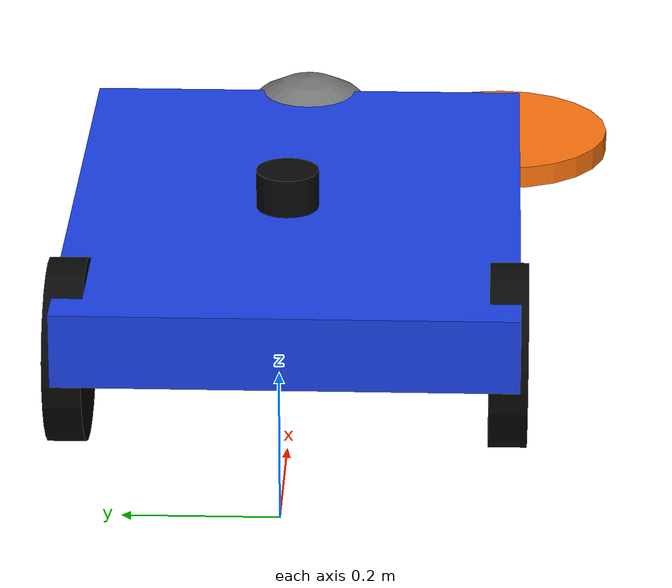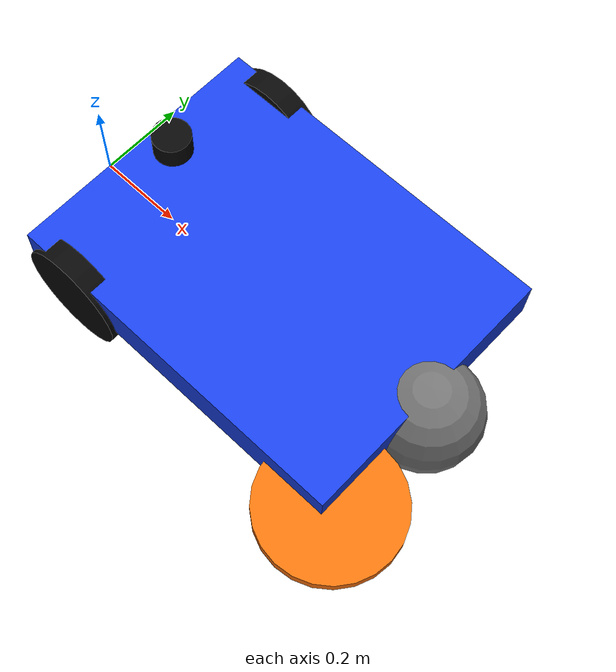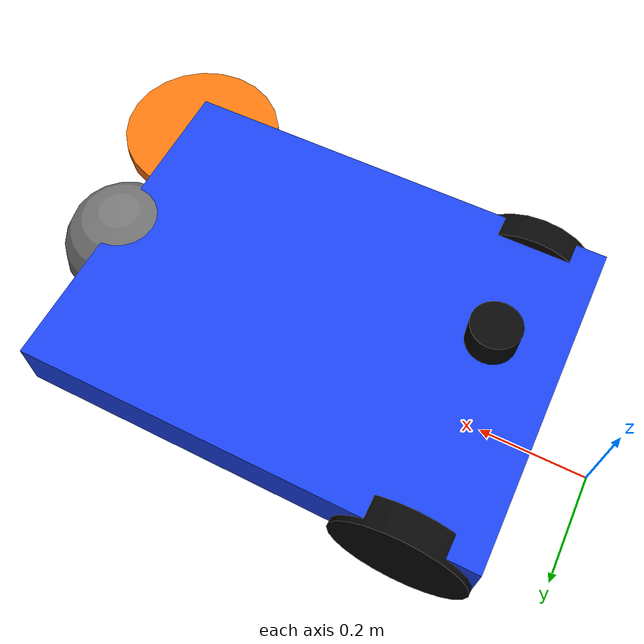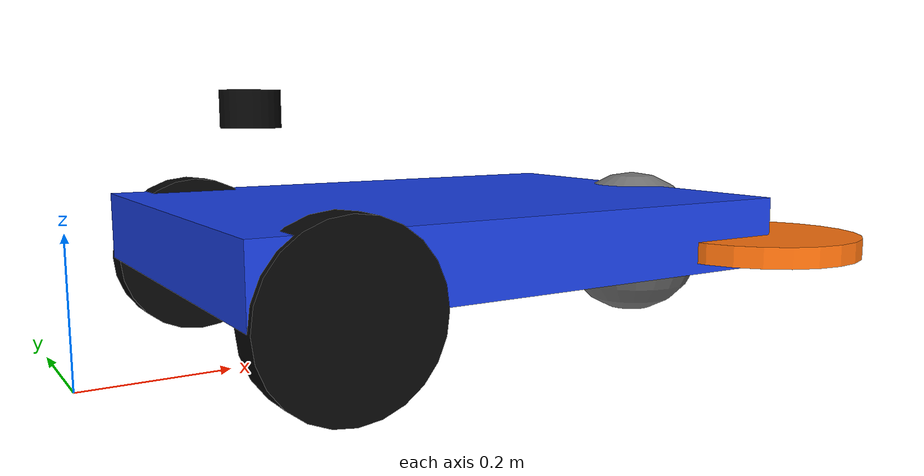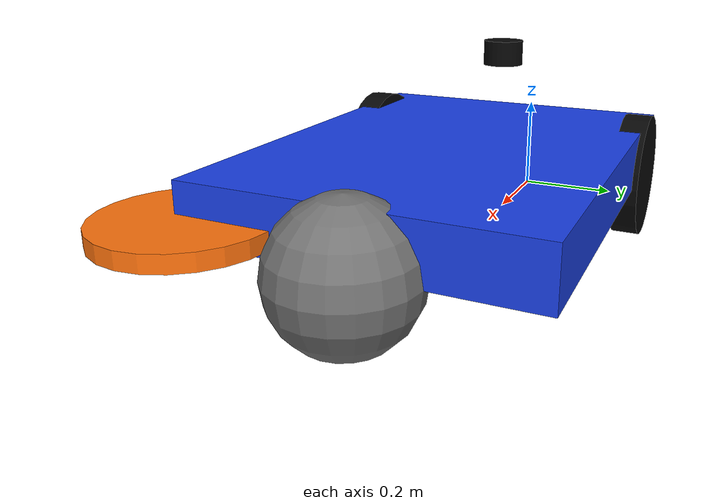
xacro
<?xml version="1.0"?>
<robot name="rectangular_sweeper" xmlns:xacro="http://www.ros.org/wiki/xacro">
  <!-- Self-contained demo copy derived from test_ws/create_description. -->
  <xacro:property name="base_length" value="0.80"/>
  <xacro:property name="base_width" value="0.60"/>
  <xacro:property name="base_height" value="0.10"/>
  <xacro:property name="wheel_radius" value="0.12"/>
  <xacro:property name="wheel_width" value="0.05"/>
  <xacro:property name="wheel_separation" value="0.57"/>

  <material name="blue"><color rgba="0.1 0.25 0.9 1"/></material>
  <material name="black"><color rgba="0.03 0.03 0.03 1"/></material>
  <material name="gray"><color rgba="0.45 0.45 0.45 1"/></material>
  <material name="orange"><color rgba="1 0.45 0.05 1"/></material>

  <link name="base_footprint"/>
  <link name="base_link">
    <visual>
      <origin xyz="${base_length / 2} 0 ${wheel_radius + base_height / 2}"/>
      <geometry><box size="${base_length} ${base_width} ${base_height}"/></geometry>
      <material name="blue"/>
    </visual>
    <collision name="base_link_collision">
      <origin xyz="${base_length / 2} 0 ${wheel_radius + base_height / 2}"/>
      <geometry><box size="${base_length} ${base_width} ${base_height}"/></geometry>
    </collision>
    <inertial>
      <origin xyz="${base_length / 2} 0 ${wheel_radius + base_height / 2}"/>
      <mass value="25.0"/>
      <inertia ixx="0.77" ixy="0" ixz="0" iyy="1.36" iyz="0" izz="1.04"/>
    </inertial>
  </link>
  <joint name="base_footprint_joint" type="fixed">
    <parent link="base_footprint"/><child link="base_link"/>
    <origin xyz="${wheel_radius} 0 0"/>
  </joint>

  <gazebo reference="base_link">
    <sensor name="chassis_contact_sensor" type="contact">
      <always_on>true</always_on>
      <update_rate>50</update_rate>
      <contact><collision>base_link_collision</collision></contact>
      <plugin name="chassis_contact_plugin" filename="libgazebo_ros_bumper.so">
        <ros><remapping>bumper_states:=chassis_contacts</remapping></ros>
        <frame_name>base_link</frame_name>
      </plugin>
    </sensor>
  </gazebo>

  <xacro:macro name="drive_wheel" params="side y">
    <link name="${side}_rear_wheel">
      <visual>
        <origin rpy="${pi / 2} 0 0"/>
        <geometry><cylinder radius="${wheel_radius}" length="${wheel_width}"/></geometry>
        <material name="black"/>
      </visual>
      <collision name="${side}_rear_wheel_collision">
        <origin rpy="${pi / 2} 0 0"/>
        <geometry><cylinder radius="${wheel_radius}" length="${wheel_width}"/></geometry>
      </collision>
      <inertial>
        <mass value="2.0"/>
        <inertia ixx="0.01" ixy="0" ixz="0" iyy="0.015" iyz="0" izz="0.01"/>
      </inertial>
    </link>
    <joint name="${side}_rear_wheel_joint" type="continuous">
      <parent link="base_link"/><child link="${side}_rear_wheel"/>
      <origin xyz="${wheel_radius} ${y} ${wheel_radius}"/>
      <axis xyz="0 1 0"/>
    </joint>
    <gazebo reference="${side}_rear_wheel">
      <mu1>1.0</mu1><mu2>1.0</mu2>
      <kp>1000000.0</kp><kd>100.0</kd>
      <maxVel>0.01</maxVel><minDepth>0.001</minDepth>
      <sensor name="${side}_rear_wheel_contact_sensor" type="contact">
        <always_on>true</always_on>
        <update_rate>50</update_rate>
        <contact><collision>${side}_rear_wheel_collision</collision></contact>
        <plugin name="${side}_rear_wheel_contact_plugin" filename="libgazebo_ros_bumper.so">
          <ros><remapping>bumper_states:=${side}_rear_wheel_contacts</remapping></ros>
          <frame_name>${side}_rear_wheel</frame_name>
        </plugin>
      </sensor>
    </gazebo>
  </xacro:macro>
  <xacro:drive_wheel side="left" y="${wheel_separation / 2}"/>
  <xacro:drive_wheel side="right" y="${-wheel_separation / 2}"/>

  <link name="front_caster_wheel">
    <visual><geometry><sphere radius="${wheel_radius}"/></geometry><material name="gray"/></visual>
    <collision name="front_caster_collision"><geometry><sphere radius="${wheel_radius}"/></geometry></collision>
    <inertial><mass value="0.5"/><inertia ixx="0.003" ixy="0" ixz="0" iyy="0.003" iyz="0" izz="0.003"/></inertial>
  </link>
  <joint name="front_caster_wheel_joint" type="fixed">
    <parent link="base_link"/><child link="front_caster_wheel"/>
    <origin xyz="${base_length} 0 ${wheel_radius}"/>
  </joint>
  <gazebo reference="front_caster_wheel">
    <mu1>0.0</mu1><mu2>0.0</mu2>
    <!-- Stiff contact limits visible ground penetration and dynamic pitching. -->
    <kp>1000000.0</kp><kd>100.0</kd>
    <maxVel>0.01</maxVel><minDepth>0.001</minDepth>
    <!-- The caster protrudes ahead of the chassis and can be the first robot
         part to hit a wall. The logger filters its normal floor contact. -->
    <sensor name="front_caster_contact_sensor" type="contact">
      <always_on>true</always_on>
      <update_rate>50</update_rate>
      <contact><collision>front_caster_collision</collision></contact>
      <plugin name="front_caster_contact_plugin" filename="libgazebo_ros_bumper.so">
        <ros><remapping>bumper_states:=front_caster_contacts</remapping></ros>
        <frame_name>front_caster_wheel</frame_name>
      </plugin>
    </sensor>
  </gazebo>

  <link name="sweeping_wheel">
    <visual>
      <geometry><cylinder radius="0.15" length="0.03"/></geometry>
      <material name="orange"/>
    </visual>
    <inertial><mass value="0.0001"/><inertia ixx="1e-6" ixy="0" ixz="0" iyy="1e-6" iyz="0" izz="1e-6"/></inertial>
  </link>
  <joint name="sweeping_wheel_joint" type="fixed">
    <parent link="base_link"/><child link="sweeping_wheel"/>
    <origin xyz="${base_length} -0.275 0.15"/>
  </joint>

  <link name="laser_frame">
    <visual><geometry><cylinder radius="0.04" length="0.05"/></geometry><material name="black"/></visual>
    <collision><geometry><cylinder radius="0.04" length="0.05"/></geometry></collision>
    <inertial><mass value="0.1"/><inertia ixx="0.0001" ixy="0" ixz="0" iyy="0.0001" iyz="0" izz="0.0001"/></inertial>
  </link>
  <joint name="laser_joint" type="fixed">
    <parent link="base_link"/><child link="laser_frame"/>
    <origin xyz="${wheel_radius} 0 0.35"/>
  </joint>

  <gazebo reference="laser_frame">
    <sensor name="laser" type="ray">
      <!-- Keep sensor activation independent of Gazebo rendering/client state. -->
      <!-- Five hertz is above the two-hertz SLAM processing limit and divides
           exactly into the 50 Hz odometry cadence without queuing unused scans. -->
      <pose>0 0 0 0 0 0</pose><always_on>true</always_on><visualize>true</visualize><update_rate>5</update_rate>
      <ray>
        <scan><horizontal><samples>360</samples><resolution>1</resolution><min_angle>-${pi}</min_angle><max_angle>${pi}</max_angle></horizontal></scan>
        <range><min>0.12</min><max>12.0</max><resolution>0.01</resolution></range>
      </ray>
      <plugin name="laser_controller" filename="libgazebo_ros_ray_sensor.so">
        <!-- Keep Gazebo's unfiltered measurements private to the self-filter. -->
        <ros><remapping>~/out:=scan_raw</remapping></ros>
        <output_type>sensor_msgs/LaserScan</output_type><frame_name>laser_frame</frame_name>
      </plugin>
    </sensor>
  </gazebo>

  <gazebo>
    <plugin name="diff_drive_controller" filename="libgazebo_ros_diff_drive.so">
      <ros><remapping>cmd_vel:=cmd_vel</remapping><remapping>odom:=odom</remapping></ros>
      <update_rate>50</update_rate>
      <left_joint>left_rear_wheel_joint</left_joint><right_joint>right_rear_wheel_joint</right_joint>
      <wheel_separation>${wheel_separation}</wheel_separation><wheel_diameter>${2 * wheel_radius}</wheel_diameter>
      <max_wheel_torque>30</max_wheel_torque><max_wheel_acceleration>3</max_wheel_acceleration><command_timeout>0.25</command_timeout>
      <publish_odom>true</publish_odom><publish_odom_tf>true</publish_odom_tf>
      <odometry_frame>odom</odometry_frame><robot_base_frame>base_footprint</robot_base_frame>
    </plugin>
    <plugin name="joint_state_publisher" filename="libgazebo_ros_joint_state_publisher.so">
      <ros><remapping>~/out:=joint_states</remapping></ros>
      <update_rate>50</update_rate>
      <joint_name>left_rear_wheel_joint</joint_name><joint_name>right_rear_wheel_joint</joint_name>
    </plugin>
  </gazebo>
</robot>
